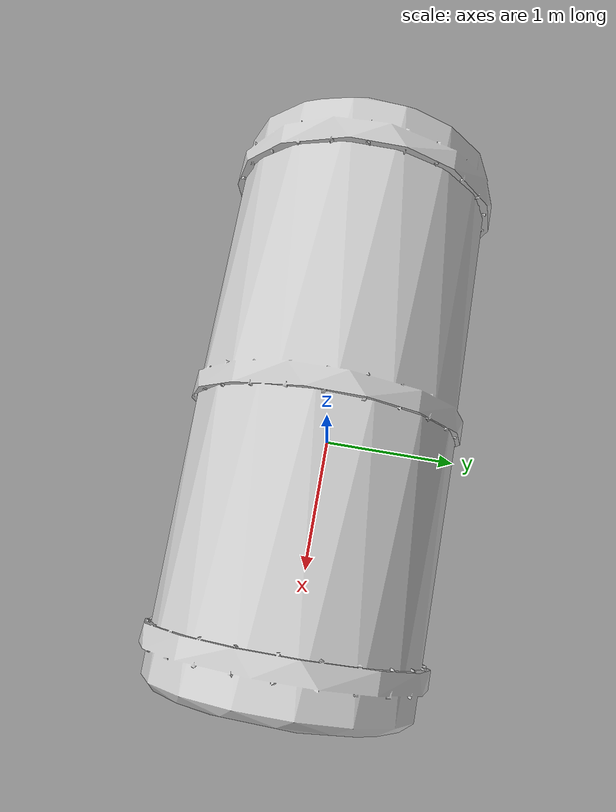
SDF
<?xml version="1.0" ?>
<sdf version="1.6">
  <model name="water_tank">
    <static>true</static>
    <link name="link">
      <collision name="collision">
        <pose>0 0 1.05 0 0 0</pose>
        <geometry>
          <mesh>
            <uri>model://water_tank/meshes/water_tank.dae</uri>
          </mesh>
        </geometry>
      </collision>
      <visual name="visual">
        <pose>0 0 1.05 0 0 0</pose>
        <geometry>
          <mesh>
            <uri>model://water_tank/meshes/water_tank.dae</uri>
          </mesh>
        </geometry>
      </visual>
    </link>
  </model>
</sdf>
